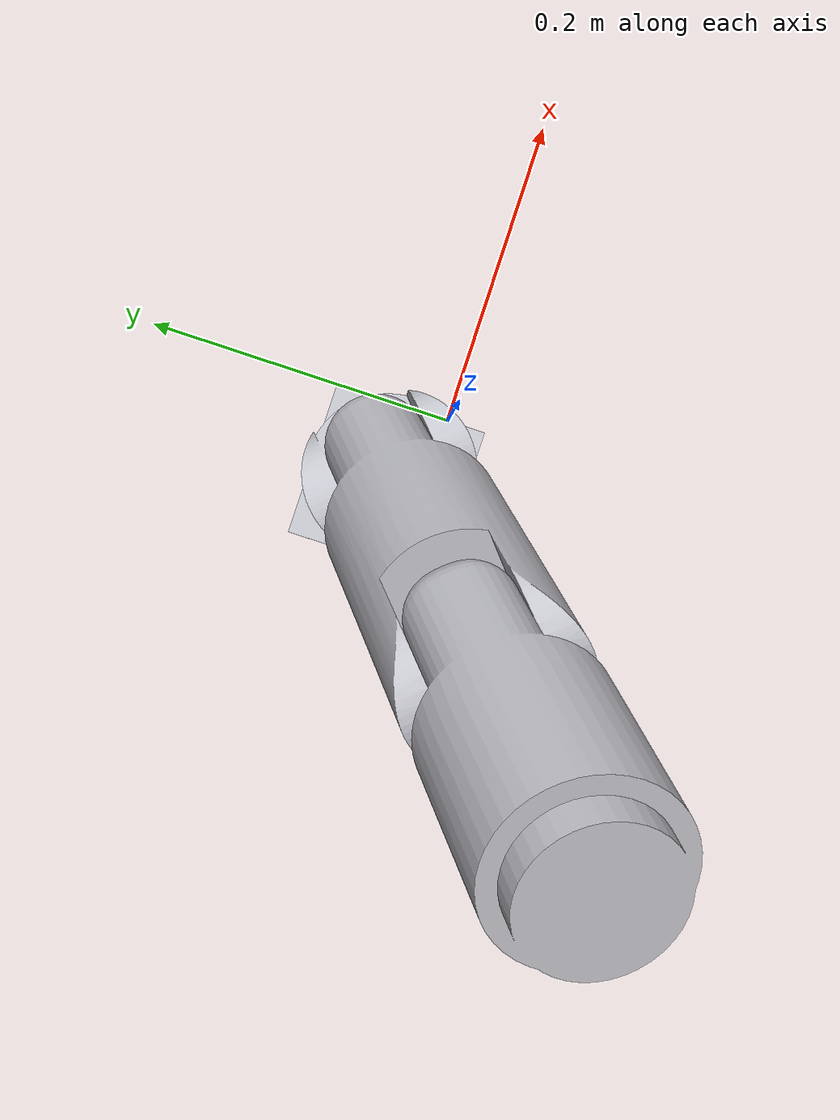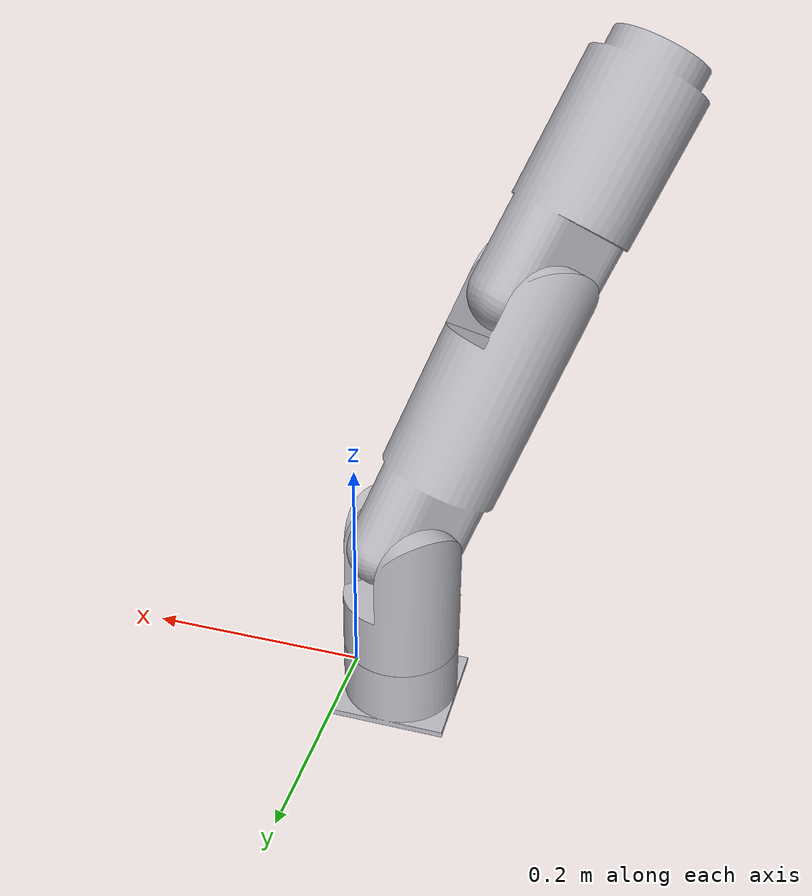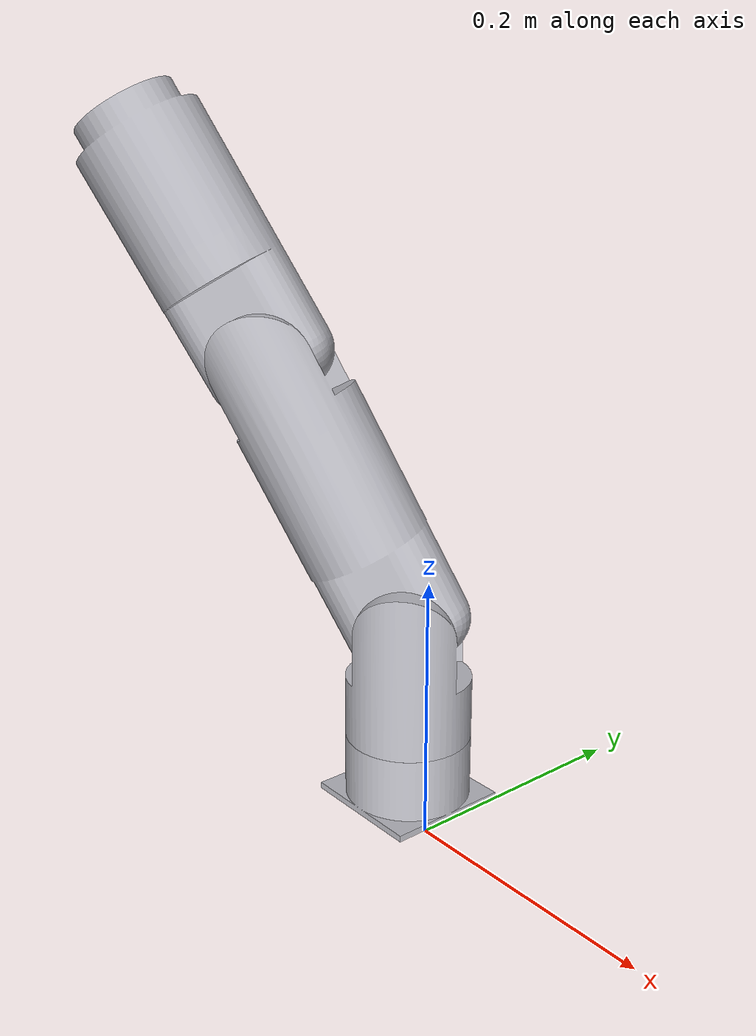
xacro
<?xml version="1.0" ?>
<robot name="robotarm" xmlns:xacro="http://www.ros.org/wiki/xacro">

<xacro:include filename="$(find robotarm_description)/urdf/materials.xacro" />
<xacro:include filename="$(find robotarm_description)/urdf/robotarm.trans" />
<xacro:include filename="$(find robotarm_description)/urdf/robotarm.gazebo" />

  <link name="world"/>

  <joint name="fixed" type="fixed">
    <parent link="world"/>
    <child link="base_link"/>
  </joint>

<link name="base_link">
  <inertial>
    <origin rpy="0 0 0" xyz="-0.04999999999999996 0.02500000000000002 0.02689405273956329"/>
    <mass value="3.475187791334983"/>
    <inertia ixx="0.00316" ixy="0.0" ixz="0.0" iyy="0.00316" iyz="0.0" izz="0.004508"/>
  </inertial>
  <visual>
    <origin rpy="0 0 0" xyz="0 0 0"/>
    <geometry>
      <mesh filename="package://robotarm_description/meshes/base_link.stl" scale="0.001 0.001 0.001"/>
    </geometry>
    <material name="silver"/>
  </visual>
  <collision>
    <origin rpy="0 0 0" xyz="0 0 0"/>
    <geometry>
      <mesh filename="package://robotarm_description/meshes/base_link.stl" scale="0.001 0.001 0.001"/>
    </geometry>
  </collision>
</link>

<link name="link0_1">
  <inertial>
    <origin rpy="0 0 0" xyz="-2.0351970025922483e-08 9.965190270189161e-09 0.04378456456724921"/>
    <mass value="4.400024194453527"/>
    <inertia ixx="0.00811" ixy="0.000776" ixz="0.0" iyy="0.007952" iyz="-0.0" izz="0.006234"/>
  </inertial>
  <visual>
    <origin rpy="0 0 0" xyz="0.05 -0.025 -0.055"/>
    <geometry>
      <mesh filename="package://robotarm_description/meshes/link0_1.stl" scale="0.001 0.001 0.001"/>
    </geometry>
    <material name="silver"/>
  </visual>
  <collision>
    <origin rpy="0 0 0" xyz="0.05 -0.025 -0.055"/>
    <geometry>
      <mesh filename="package://robotarm_description/meshes/link0_1.stl" scale="0.001 0.001 0.001"/>
    </geometry>
  </collision>
</link>

<link name="link1_1">
  <inertial>
    <origin rpy="0 0 0" xyz="-0.058785911177173356 -0.012688933763409444 0.10088222699524893"/>
    <mass value="11.901710054466355"/>
    <inertia ixx="0.056192" ixy="-0.004943" ixz="0.01416" iyy="0.057195" iyz="0.012796" izz="0.024648"/>
  </inertial>
  <visual>
    <origin rpy="0 0 0" xyz="0.029886 -0.002742 -0.145"/>
    <geometry>
      <mesh filename="package://robotarm_description/meshes/link1_1.stl" scale="0.001 0.001 0.001"/>
    </geometry>
    <material name="silver"/>
  </visual>
  <collision>
    <origin rpy="0 0 0" xyz="0.029886 -0.002742 -0.145"/>
    <geometry>
      <mesh filename="package://robotarm_description/meshes/link1_1.stl" scale="0.001 0.001 0.001"/>
    </geometry>
  </collision>
</link>

<link name="link2_1">
  <inertial>
    <origin rpy="0 0 0" xyz="0.03769262007985558 0.07449658039809773 0.07095535530583519"/>
    <mass value="11.505836906165397"/>
    <inertia ixx="0.0387" ixy="-0.01045" ixz="-0.012991" iyy="0.04082" iyz="-0.01174" izz="0.032537"/>
  </inertial>
  <visual>
    <origin rpy="0 0 0" xyz="0.108216 0.068043 -0.349338"/>
    <geometry>
      <mesh filename="package://robotarm_description/meshes/link2_1.stl" scale="0.001 0.001 0.001"/>
    </geometry>
    <material name="silver"/>
  </visual>
  <collision>
    <origin rpy="0 0 0" xyz="0.108216 0.068043 -0.349338"/>
    <geometry>
      <mesh filename="package://robotarm_description/meshes/link2_1.stl" scale="0.001 0.001 0.001"/>
    </geometry>
  </collision>
</link>

<joint name="Rev4" type="continuous">
  <origin rpy="0 0 0" xyz="-0.05 0.025 0.055"/>
  <parent link="base_link"/>
  <child link="link0_1"/>
  <axis xyz="0.0 0.0 1.0"/>
</joint>

<joint name="Rev5" type="revolute">
  <origin rpy="0 0 0" xyz="0.020114 -0.022258 0.09"/>
  <parent link="link0_1"/>
  <child link="link1_1"/>
  <axis xyz="-0.670473 0.741934 0.0"/>
  <limit effort="100" lower="-0.872665" upper="1.745329" velocity="100"/>
</joint>

<joint name="Rev6" type="revolute">
  <origin rpy="0 0 0" xyz="-0.07833 -0.070785 0.204338"/>
  <parent link="link1_1"/>
  <child link="link2_1"/>
  <axis xyz="-0.670473 0.741934 0.0"/>
  <limit effort="100" lower="-2.617994" upper="-0.087266" velocity="100"/>
</joint>

</robot>

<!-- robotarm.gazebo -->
<robot name="robotarm" xmlns:xacro="http://www.ros.org/wiki/xacro" >

<xacro:property name="body_color" value="Gazebo/Silver" />

  <gazebo>
  <plugin name="gazebo_ros_control" filename="libgazebo_ros_control.so">
    <robotNamespace>/robotarm</robotNamespace>
    <robotSimType>gazebo_ros_control/DefaultRobotHWSim</robotSimType>
  </plugin>
</gazebo>

<gazebo reference="base_link">
  <material>${body_color}</material>
  <mu1>0.2</mu1>
  <mu2>0.2</mu2>
  <selfCollide>true</selfCollide>
  <gravity>true</gravity>
</gazebo>

<gazebo reference="link0_1">
  <material>${body_color}</material>
  <mu1>0.2</mu1>
  <mu2>0.2</mu2>
  <selfCollide>true</selfCollide>
</gazebo>

<gazebo reference="link1_1">
  <material>${body_color}</material>
  <mu1>0.2</mu1>
  <mu2>0.2</mu2>
  <selfCollide>true</selfCollide>
</gazebo>

<gazebo reference="link2_1">
  <material>${body_color}</material>
  <mu1>0.2</mu1>
  <mu2>0.2</mu2>
  <selfCollide>true</selfCollide>
</gazebo>

</robot>
